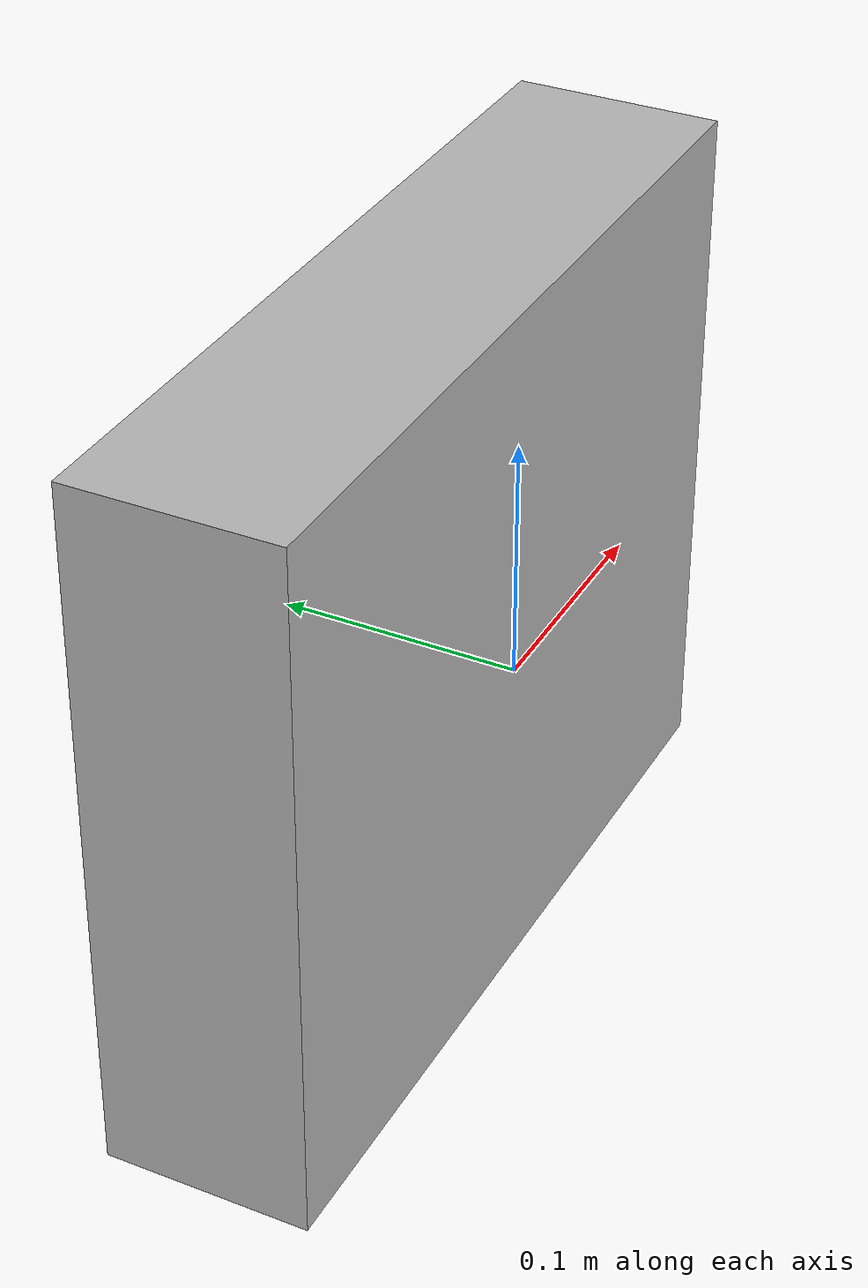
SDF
<?xml version="1.0" ?>
<sdf version="1.4">
  <model name="shelf3_box3_1b">
    <link name="body">
      <pose>0 0 0 0 0 0</pose>
      <inertial>
        <pose>   0.006402   0.042641   0.003950 0 0 0</pose>
        <mass>0.5</mass>
        <inertia>
          <ixx>0.01</ixx>
          <ixy>0</ixy>
          <ixz>0</ixz>
          <iyy>0.01</iyy>
          <iyz>0</iyz>
          <izz>0.01</izz>
        </inertia>
      </inertial>
      <collision name="collision">
        <geometry>
          <mesh>
            <uri>model://bookshelf/shelf3_items/box3_1b/box3_1b.dae</uri>
          </mesh>
        </geometry>
      </collision>
      <visual name="visual">
        <geometry>
          <mesh>
            <uri>model://bookshelf/shelf3_items/box3_1b/box3_1b.dae</uri>
          </mesh>
        </geometry>
      </visual>
    </link>
  </model>
</sdf>
